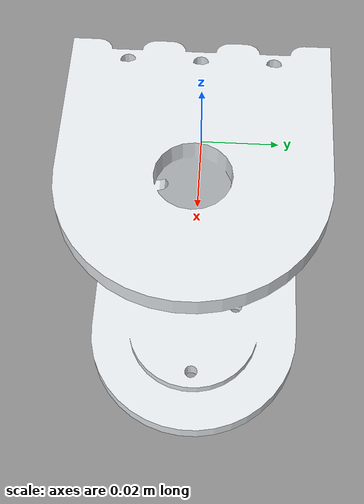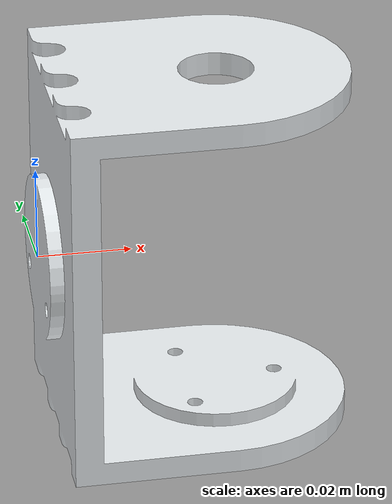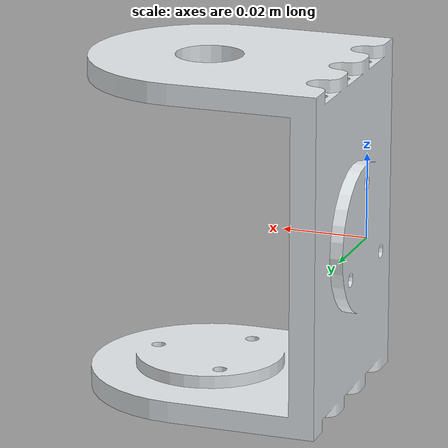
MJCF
<mujoco model="LINK4">
  <default>
    <default class="visual">
      <geom group="2" type="mesh" contype="0" conaffinity="0"/>
    </default>
    <default class="collision">
      <geom group="3" type="mesh"/>
    </default>
  </default>
  <asset>
    <material name="mtl_LINK4" specular="0.20000000000000004" shininess="1.0" rgba="0.89803922 0.91764706 0.92941176 1.0"/>
    <mesh file="LINK4.obj"/>
  </asset>
  <worldbody>
    <body name="LINK4">
      <geom material="mtl_LINK4" mesh="LINK4" class="visual"/>
      <geom mesh="LINK4" class="collision"/>
    </body>
  </worldbody>
</mujoco>
